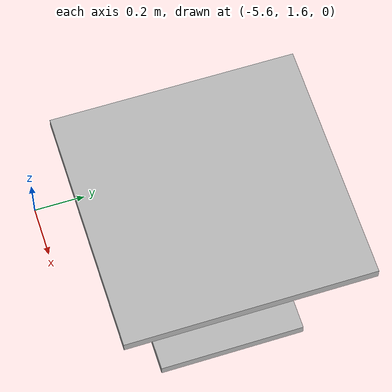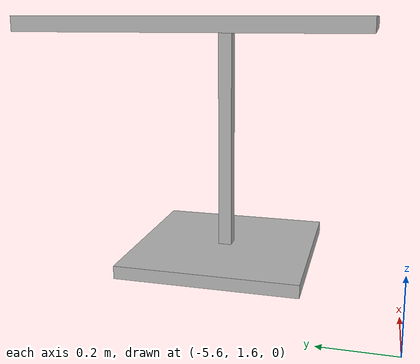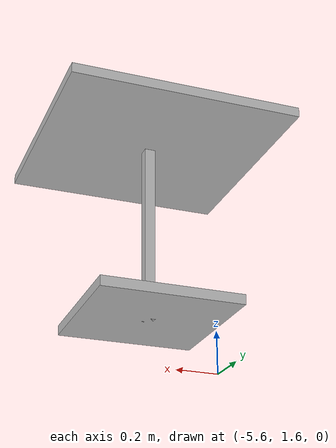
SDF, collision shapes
<?xml version='1.0' encoding='utf-8'?>
<sdf version="1.7"><model name="cafe_table">
      <static>1</static>
      <link name="link">
        <collision name="surface">
          <pose>0 0 0.755 0 -0 0</pose>
          <geometry>
            <box>
              <size>0.913 0.913 0.04</size>
            </box>
          </geometry>
          <max_contacts>10</max_contacts>
          <surface>
            <contact>
              <ode />
            </contact>
            <bounce />
            <friction>
              <torsional>
                <ode />
              </torsional>
              <ode />
            </friction>
          </surface>
        </collision>
        <collision name="column">
          <pose>0 0 0.37 0 -0 0</pose>
          <geometry>
            <box>
              <size>0.042 0.042 0.74</size>
            </box>
          </geometry>
          <max_contacts>10</max_contacts>
          <surface>
            <contact>
              <ode />
            </contact>
            <bounce />
            <friction>
              <torsional>
                <ode />
              </torsional>
              <ode />
            </friction>
          </surface>
        </collision>
        <collision name="base">
          <pose>0 0 0.02 0 -0 0</pose>
          <geometry>
            <box>
              <size>0.56 0.56 0.04</size>
            </box>
          </geometry>
          <max_contacts>10</max_contacts>
          <surface>
            <contact>
              <ode />
            </contact>
            <bounce />
            <friction>
              <torsional>
                <ode />
              </torsional>
              <ode />
            </friction>
          </surface>
        </collision>
        <visual name="visual">
          <geometry>
            <mesh>
              <uri>model://cafe_table/meshes/cafe_table.dae</uri>
            </mesh>
          </geometry>
        </visual>
        <self_collide>0</self_collide>
        <enable_wind>0</enable_wind>
        <kinematic>0</kinematic>
      </link>
      <pose>-5.07598 2.14888 0 0 -0 0</pose>
    </model>
    </sdf>
